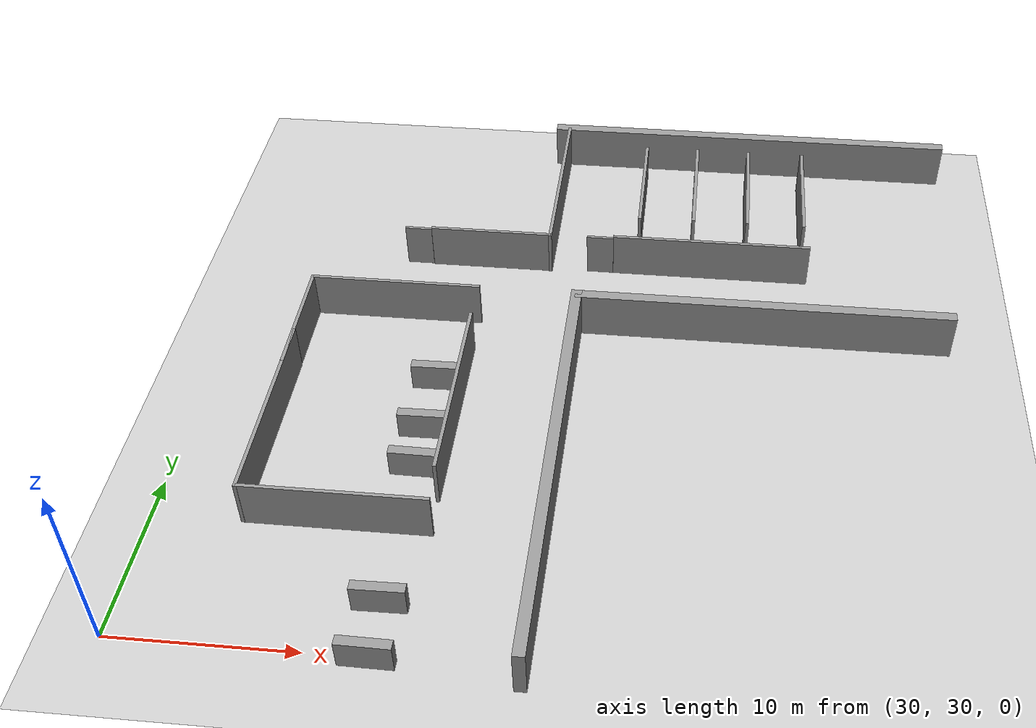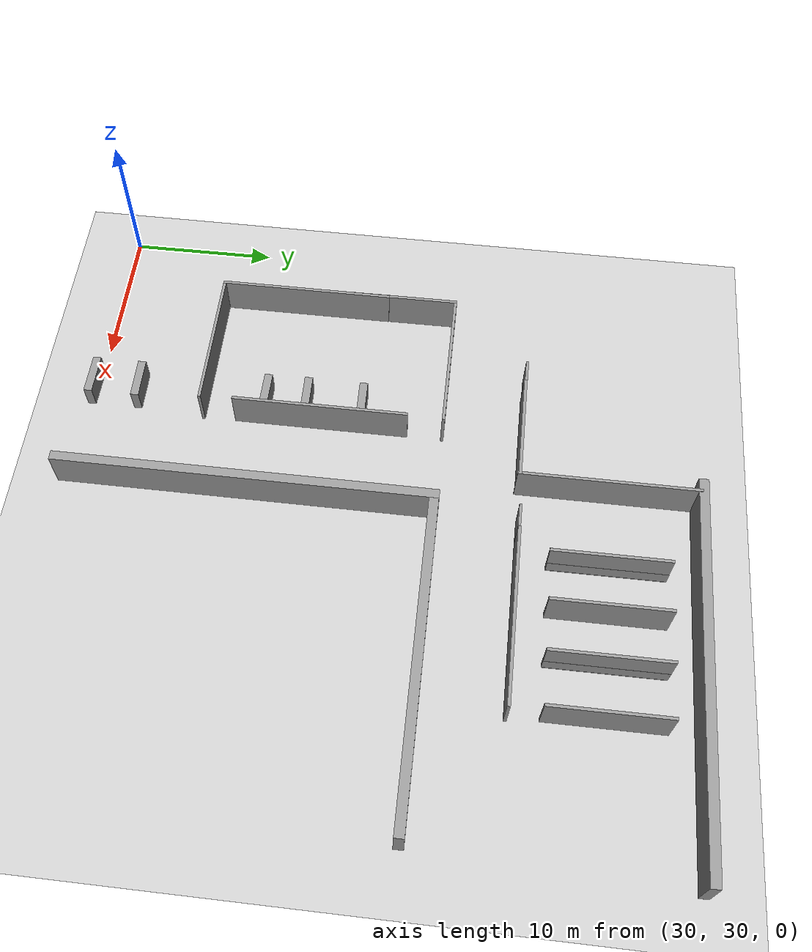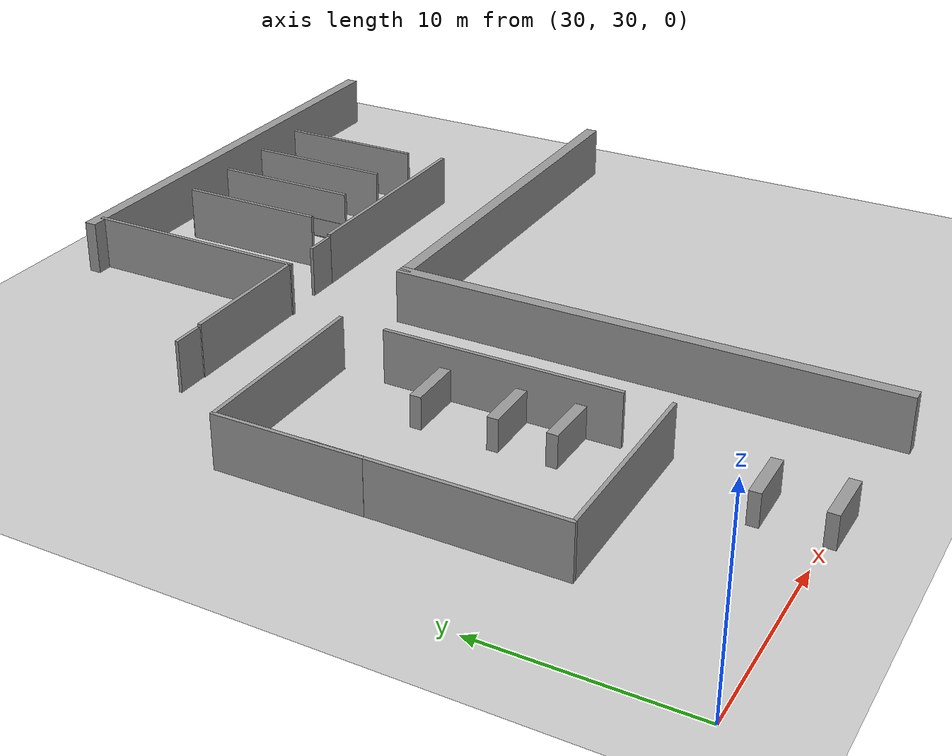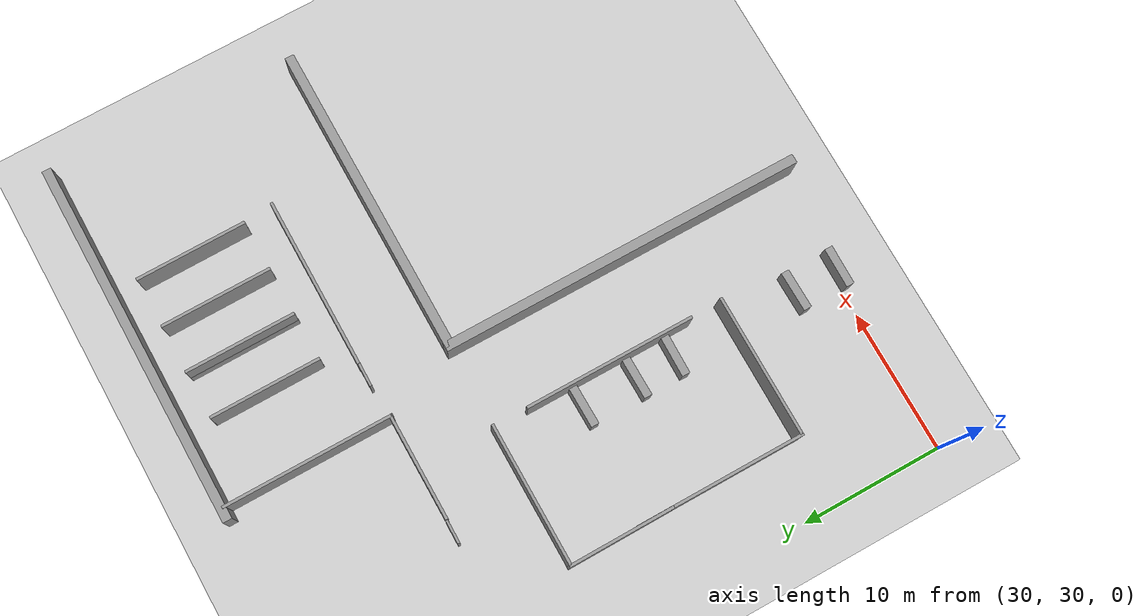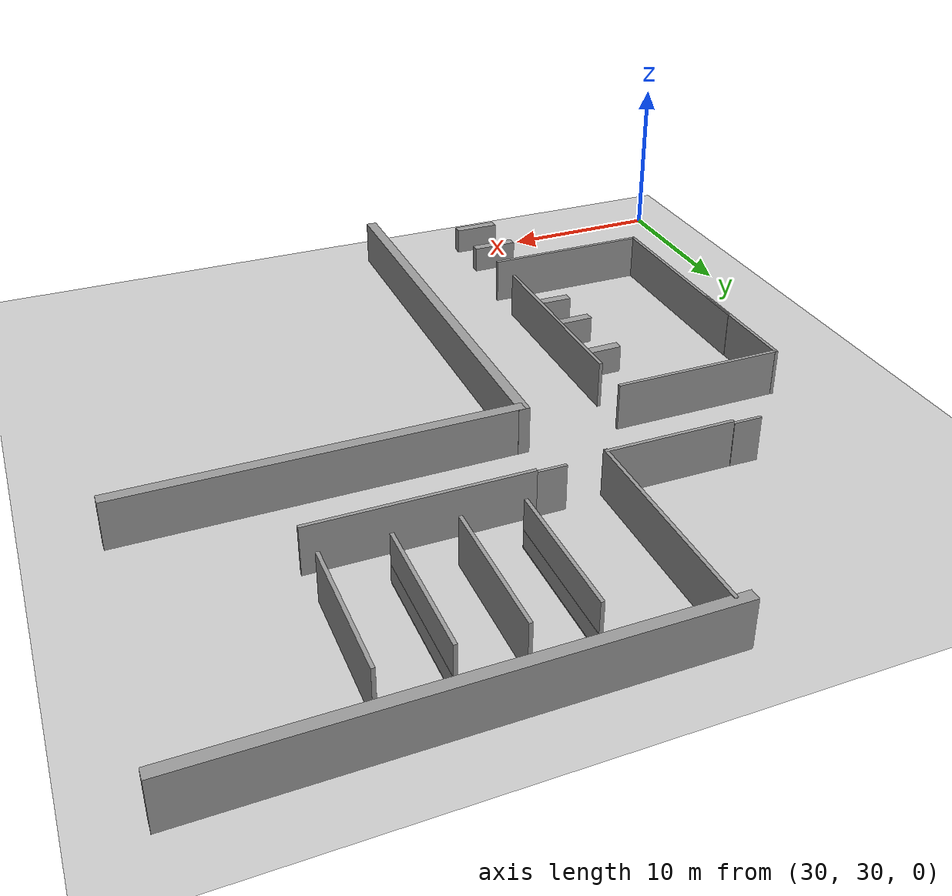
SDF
<sdf version="1.7">
 <world name="default">
  <model name="ground_plane">
   <static>1</static>
   <link name="link">
    <collision name="collision">
     <geometry><plane><normal>0 0 1</normal><size>100 100</size></plane></geometry>
     <surface><friction><ode><mu>100</mu><mu2>50</mu2></ode></friction></surface>
    </collision>
    <visual name="visual">
     <cast_shadows>0</cast_shadows>
     <geometry><plane><normal>0 0 1</normal><size>100 100</size></plane></geometry>
     <material>
      <script><uri>file://media/materials/scripts/gazebo.material</uri><name>Gazebo/Grey</name></script>
     </material>
    </visual>
   </link>
  </model>
  <model name="jiaoshi_clone_clone_clone_0">
   <model name="grey_wall">
    <static>1</static>
    <link name="link">
     <pose>0 0 1.4 0 -0 0</pose>
     <collision name="collision"><geometry><box><size>7.5 0.2 2.8</size></box></geometry></collision>
     <visual name="visual">
      <cast_shadows>0</cast_shadows>
      <geometry><box><size>7.5 0.2 2.8</size></box></geometry>
      <material>
       <script>
        <uri>model://grey_wall/materials/scripts</uri>
        <uri>model://grey_wall/materials/textures</uri>
        <name>vrc/grey_wall</name>
       </script>
      </material>
     </visual>
    </link>
    <pose>-3.38172 4.2623 0 0 0 -1.56473</pose>
   </model>
   <model name="grey_wall_10m">
    <link name="link">
     <pose>1.25079 -0.023082 1.4 0 -0 0</pose>
     <inertial>
      <inertia><ixx>0</ixx><ixy>0</ixy><ixz>0</ixz><iyy>0</iyy><iyz>0</iyz><izz>0</izz></inertia>
      <mass>0</mass>
     </inertial>
     <visual name="visual">
      <cast_shadows>0</cast_shadows>
      <geometry><box><size>10.0157 0.2 2.8</size></box></geometry>
      <material>
       <script>
        <uri>model://grey_wall/materials/scripts</uri>
        <uri>model://grey_wall/materials/textures</uri>
        <name>vrc/grey_wall</name>
       </script>
       <shader type="pixel"/>
       <ambient>1 1 1 1</ambient>
       <diffuse>1 1 1 1</diffuse>
       <specular>0 0 0 1</specular>
       <emissive>0 0 0 1</emissive>
      </material>
     </visual>
     <collision name="collision">
      <geometry><box><size>10.0157 0.2 2.8</size></box></geometry>
      <surface>
       <friction>
        <ode><mu>1</mu><mu2>1</mu2><fdir1>0 0 0</fdir1><slip1>0</slip1><slip2>0</slip2></ode>
        <torsional>
         <coefficient>1</coefficient>
         <patch_radius>0</patch_radius>
         <surface_radius>0</surface_radius>
         <use_patch_radius>1</use_patch_radius>
         <ode><slip>0</slip></ode>
        </torsional>
       </friction>
       <bounce><restitution_coefficient>0</restitution_coefficient><threshold>1e+06</threshold></bounce>
       <contact>
        <collide_without_contact>0</collide_without_contact>
        <collide_without_contact_bitmask>1</collide_without_contact_bitmask>
        <collide_bitmask>1</collide_bitmask>
        <ode>
         <soft_cfm>0</soft_cfm>
         <soft_erp>0.2</soft_erp>
         <kp>1e+13</kp>
         <kd>1</kd>
         <max_vel>0.01</max_vel>
         <min_depth>0</min_depth>
        </ode>
        <bullet>
         <split_impulse>1</split_impulse>
         <split_impulse_penetration_threshold>-0.01</split_impulse_penetration_threshold>
         <soft_cfm>0</soft_cfm>
         <soft_erp>0.2</soft_erp>
         <kp>1e+13</kp>
         <kd>1</kd>
        </bullet>
       </contact>
      </surface>
     </collision>
    </link>
    <static>1</static>
    <pose>0.433183 -8.77625 0 0 -0 0</pose>
   </model>
   <model name="grey_wall_10m_0">
    <link name="link">
     <pose>1.25079 -0.023082 1.4 0 -0 0</pose>
     <inertial>
      <inertia><ixx>0</ixx><ixy>0</ixy><ixz>0</ixz><iyy>0</iyy><iyz>0</iyz><izz>0</izz></inertia>
      <mass>0</mass>
     </inertial>
     <visual name="visual">
      <cast_shadows>0</cast_shadows>
      <geometry><box><size>10.0157 0.2 2.8</size></box></geometry>
      <material>
       <script>
        <uri>model://grey_wall/materials/scripts</uri>
        <uri>model://grey_wall/materials/textures</uri>
        <name>vrc/grey_wall</name>
       </script>
       <shader type="pixel"/>
       <ambient>1 1 1 1</ambient>
       <diffuse>1 1 1 1</diffuse>
       <specular>0 0 0 1</specular>
       <emissive>0 0 0 1</emissive>
      </material>
     </visual>
     <collision name="collision">
      <geometry><box><size>10.0157 0.2 2.8</size></box></geometry>
      <surface>
       <friction>
        <ode><mu>1</mu><mu2>1</mu2><fdir1>0 0 0</fdir1><slip1>0</slip1><slip2>0</slip2></ode>
        <torsional>
         <coefficient>1</coefficient>
         <patch_radius>0</patch_radius>
         <surface_radius>0</surface_radius>
         <use_patch_radius>1</use_patch_radius>
         <ode><slip>0</slip></ode>
        </torsional>
       </friction>
       <bounce><restitution_coefficient>0</restitution_coefficient><threshold>1e+06</threshold></bounce>
       <contact>
        <collide_without_contact>0</collide_without_contact>
        <collide_without_contact_bitmask>1</collide_without_contact_bitmask>
        <collide_bitmask>1</collide_bitmask>
        <ode>
         <soft_cfm>0</soft_cfm>
         <soft_erp>0.2</soft_erp>
         <kp>1e+13</kp>
         <kd>1</kd>
         <max_vel>0.01</max_vel>
         <min_depth>0</min_depth>
        </ode>
        <bullet>
         <split_impulse>1</split_impulse>
         <split_impulse_penetration_threshold>-0.01</split_impulse_penetration_threshold>
         <soft_cfm>0</soft_cfm>
         <soft_erp>0.2</soft_erp>
         <kp>1e+13</kp>
         <kd>1</kd>
        </bullet>
       </contact>
      </surface>
     </collision>
    </link>
    <static>1</static>
    <pose>0.377364 7.92573 0 0 -0 0</pose>
   </model>
   <model name="grey_wall_12m_vertial">
    <link name="link">
     <pose>0.289112 -0.003891 1.4 0 0 -1.5701</pose>
     <inertial>
      <inertia><ixx>0</ixx><ixy>0</ixy><ixz>0</ixz><iyy>0</iyy><iyz>0</iyz><izz>0</izz></inertia>
      <mass>0</mass>
     </inertial>
     <visual name="visual">
      <cast_shadows>0</cast_shadows>
      <geometry><box><size>12.0527 0.2 2.8</size></box></geometry>
      <material>
       <script>
        <uri>model://grey_wall/materials/scripts</uri>
        <uri>model://grey_wall/materials/textures</uri>
        <name>vrc/grey_wall</name>
       </script>
       <shader type="pixel"/>
       <ambient>1 1 1 1</ambient>
       <diffuse>1 1 1 1</diffuse>
       <specular>0 0 0 1</specular>
       <emissive>0 0 0 1</emissive>
      </material>
     </visual>
     <collision name="collision">
      <geometry><box><size>12.0527 0.2 2.8</size></box></geometry>
      <surface>
       <friction>
        <ode><mu>1</mu><mu2>1</mu2><fdir1>0 0 0</fdir1><slip1>0</slip1><slip2>0</slip2></ode>
        <torsional>
         <coefficient>1</coefficient>
         <patch_radius>0</patch_radius>
         <surface_radius>0</surface_radius>
         <use_patch_radius>1</use_patch_radius>
         <ode><slip>0</slip></ode>
        </torsional>
       </friction>
       <bounce><restitution_coefficient>0</restitution_coefficient><threshold>1e+06</threshold></bounce>
       <contact>
        <collide_without_contact>0</collide_without_contact>
        <collide_without_contact_bitmask>1</collide_without_contact_bitmask>
        <collide_bitmask>1</collide_bitmask>
        <ode>
         <soft_cfm>0</soft_cfm>
         <soft_erp>0.2</soft_erp>
         <kp>1e+13</kp>
         <kd>1</kd>
         <max_vel>0.01</max_vel>
         <min_depth>0</min_depth>
        </ode>
        <bullet>
         <split_impulse>1</split_impulse>
         <split_impulse_penetration_threshold>-0.01</split_impulse_penetration_threshold>
         <soft_cfm>0</soft_cfm>
         <soft_erp>0.2</soft_erp>
         <kp>1e+13</kp>
         <kd>1</kd>
        </bullet>
       </contact>
      </surface>
     </collision>
    </link>
    <static>1</static>
    <pose>-3.63668 -2.87268 0 0 -0 0</pose>
   </model>
   <model name="grey_wall_12m_vertial_0">
    <link name="link">
     <pose>0.289112 -0.003891 1.4 0 0 -1.5701</pose>
     <inertial>
      <inertia><ixx>0</ixx><ixy>0</ixy><ixz>0</ixz><iyy>0</iyy><iyz>0</iyz><izz>0</izz></inertia>
      <mass>0</mass>
     </inertial>
     <visual name="visual">
      <cast_shadows>0</cast_shadows>
      <geometry><box><size>12.0527 0.2 2.8</size></box></geometry>
      <material>
       <script>
        <uri>model://grey_wall/materials/scripts</uri>
        <uri>model://grey_wall/materials/textures</uri>
        <name>vrc/grey_wall</name>
       </script>
       <shader type="pixel"/>
       <ambient>1 1 1 1</ambient>
       <diffuse>1 1 1 1</diffuse>
       <specular>0 0 0 1</specular>
       <emissive>0 0 0 1</emissive>
      </material>
     </visual>
     <collision name="collision">
      <geometry><box><size>12.0527 0.2 2.8</size></box></geometry>
      <surface>
       <friction>
        <ode><mu>1</mu><mu2>1</mu2><fdir1>0 0 0</fdir1><slip1>0</slip1><slip2>0</slip2></ode>
        <torsional>
         <coefficient>1</coefficient>
         <patch_radius>0</patch_radius>
         <surface_radius>0</surface_radius>
         <use_patch_radius>1</use_patch_radius>
         <ode><slip>0</slip></ode>
        </torsional>
       </friction>
       <bounce><restitution_coefficient>0</restitution_coefficient><threshold>1e+06</threshold></bounce>
       <contact>
        <collide_without_contact>0</collide_without_contact>
        <collide_without_contact_bitmask>1</collide_without_contact_bitmask>
        <collide_bitmask>1</collide_bitmask>
        <ode>
         <soft_cfm>0</soft_cfm>
         <soft_erp>0.2</soft_erp>
         <kp>1e+13</kp>
         <kd>1</kd>
         <max_vel>0.01</max_vel>
         <min_depth>0</min_depth>
        </ode>
        <bullet>
         <split_impulse>1</split_impulse>
         <split_impulse_penetration_threshold>-0.01</split_impulse_penetration_threshold>
         <soft_cfm>0</soft_cfm>
         <soft_erp>0.2</soft_erp>
         <kp>1e+13</kp>
         <kd>1</kd>
        </bullet>
       </contact>
      </surface>
     </collision>
    </link>
    <static>1</static>
    <pose>6.20786 -0.539083 0 0 -0 0</pose>
   </model>
   <static>0</static>
   <pose>38.2716 46.5887 0 0 -0 0</pose>
  </model>
  <model name="grew_wall_long_vertial_1_clone_clone_1">
   <model name="grey_wall_long">
    <link name="link">
     <pose>0 0 1.37589 0 -0 0</pose>
     <inertial>
      <inertia><ixx>0</ixx><ixy>0</ixy><ixz>0</ixz><iyy>0</iyy><iyz>0</iyz><izz>0</izz></inertia>
      <mass>0</mass>
     </inertial>
     <visual name="visual">
      <cast_shadows>0</cast_shadows>
      <geometry><box><size>25.8815 0.642976 2.8</size></box></geometry>
      <material>
       <script>
        <uri>model://grey_wall/materials/scripts</uri>
        <uri>model://grey_wall/materials/textures</uri>
        <name>vrc/grey_wall</name>
       </script>
       <shader type="pixel"><normal_map>__default__</normal_map></shader>
       <ambient>1 1 1 1</ambient>
       <diffuse>1 1 1 1</diffuse>
       <specular>0 0 0 1</specular>
       <emissive>0 0 0 1</emissive>
      </material>
     </visual>
     <collision name="collision">
      <geometry><box><size>25.8815 0.642976 2.8</size></box></geometry>
      <surface>
       <friction>
        <ode><mu>1</mu><mu2>1</mu2><fdir1>0 0 0</fdir1><slip1>0</slip1><slip2>0</slip2></ode>
        <torsional>
         <coefficient>1</coefficient>
         <patch_radius>0</patch_radius>
         <surface_radius>0</surface_radius>
         <use_patch_radius>1</use_patch_radius>
         <ode><slip>0</slip></ode>
        </torsional>
       </friction>
       <bounce><restitution_coefficient>0</restitution_coefficient><threshold>1e+06</threshold></bounce>
       <contact>
        <collide_without_contact>0</collide_without_contact>
        <collide_without_contact_bitmask>1</collide_without_contact_bitmask>
        <collide_bitmask>1</collide_bitmask>
        <ode>
         <soft_cfm>0</soft_cfm>
         <soft_erp>0.2</soft_erp>
         <kp>1e+13</kp>
         <kd>1</kd>
         <max_vel>0.01</max_vel>
         <min_depth>0</min_depth>
        </ode>
        <bullet>
         <split_impulse>1</split_impulse>
         <split_impulse_penetration_threshold>-0.01</split_impulse_penetration_threshold>
         <soft_cfm>0</soft_cfm>
         <soft_erp>0.2</soft_erp>
         <kp>1e+13</kp>
         <kd>1</kd>
        </bullet>
       </contact>
      </surface>
     </collision>
    </link>
    <static>1</static>
    <pose>1e-06 -0 0 0 -0 1.57003</pose>
   </model>
   <static>0</static>
   <pose>50.6453 41.7944 0 0 -0 0</pose>
  </model>
  <model name="grey_wall_long_2_clone_0">
   <link name="link">
    <pose>0 0 1.37589 0 -0 0</pose>
    <inertial>
     <inertia><ixx>0</ixx><ixy>0</ixy><ixz>0</ixz><iyy>0</iyy><iyz>0</iyz><izz>0</izz></inertia>
     <mass>0</mass>
    </inertial>
    <visual name="visual">
     <cast_shadows>0</cast_shadows>
     <geometry><box><size>25.8815 0.642976 2.8</size></box></geometry>
     <material>
      <script>
       <uri>model://grey_wall/materials/scripts</uri>
       <uri>model://grey_wall/materials/textures</uri>
       <name>vrc/grey_wall</name>
      </script>
      <shader type="pixel"><normal_map>__default__</normal_map></shader>
      <ambient>1 1 1 1</ambient>
      <diffuse>1 1 1 1</diffuse>
      <specular>0 0 0 1</specular>
      <emissive>0 0 0 1</emissive>
     </material>
    </visual>
    <collision name="collision">
     <geometry><box><size>25.8815 0.642976 2.8</size></box></geometry>
     <surface>
      <friction>
       <ode><mu>1</mu><mu2>1</mu2><fdir1>0 0 0</fdir1><slip1>0</slip1><slip2>0</slip2></ode>
       <torsional>
        <coefficient>1</coefficient>
        <patch_radius>0</patch_radius>
        <surface_radius>0</surface_radius>
        <use_patch_radius>1</use_patch_radius>
        <ode><slip>0</slip></ode>
       </torsional>
      </friction>
      <bounce><restitution_coefficient>0</restitution_coefficient><threshold>1e+06</threshold></bounce>
      <contact>
       <collide_without_contact>0</collide_without_contact>
       <collide_without_contact_bitmask>1</collide_without_contact_bitmask>
       <collide_bitmask>1</collide_bitmask>
       <ode>
        <soft_cfm>0</soft_cfm>
        <soft_erp>0.2</soft_erp>
        <kp>1e+13</kp>
        <kd>1</kd>
        <max_vel>0.01</max_vel>
        <min_depth>0</min_depth>
       </ode>
       <bullet>
        <split_impulse>1</split_impulse>
        <split_impulse_penetration_threshold>-0.01</split_impulse_penetration_threshold>
        <soft_cfm>0</soft_cfm>
        <soft_erp>0.2</soft_erp>
        <kp>1e+13</kp>
        <kd>1</kd>
       </bullet>
      </contact>
     </surface>
    </collision>
   </link>
   <static>1</static>
   <pose>60.5181 71.8016 0 0 -0 0</pose>
  </model>
  <model name="grey_wall_long_term_clone_0">
   <link name="link">
    <pose>-1.74587 -0.378849 1.37589 0 -0 0</pose>
    <inertial>
     <inertia><ixx>0</ixx><ixy>0</ixy><ixz>0</ixz><iyy>0</iyy><iyz>0</iyz><izz>0</izz></inertia>
     <mass>0</mass>
    </inertial>
    <visual name="visual">
     <cast_shadows>0</cast_shadows>
     <geometry><box><size>22.1596 0.642976 2.8</size></box></geometry>
     <material>
      <script>
       <uri>model://grey_wall/materials/scripts</uri>
       <uri>model://grey_wall/materials/textures</uri>
       <name>vrc/grey_wall</name>
      </script>
      <shader type="pixel"><normal_map>__default__</normal_map></shader>
      <ambient>1 1 1 1</ambient>
      <diffuse>1 1 1 1</diffuse>
      <specular>0 0 0 1</specular>
      <emissive>0 0 0 1</emissive>
     </material>
    </visual>
    <collision name="collision">
     <geometry><box><size>22.1596 0.642976 2.8</size></box></geometry>
     <surface>
      <friction>
       <ode><mu>1</mu><mu2>1</mu2><fdir1>0 0 0</fdir1><slip1>0</slip1><slip2>0</slip2></ode>
       <torsional>
        <coefficient>1</coefficient>
        <patch_radius>0</patch_radius>
        <surface_radius>0</surface_radius>
        <use_patch_radius>1</use_patch_radius>
        <ode><slip>0</slip></ode>
       </torsional>
      </friction>
      <bounce><restitution_coefficient>0</restitution_coefficient><threshold>1e+06</threshold></bounce>
      <contact>
       <collide_without_contact>0</collide_without_contact>
       <collide_without_contact_bitmask>1</collide_without_contact_bitmask>
       <collide_bitmask>1</collide_bitmask>
       <ode>
        <soft_cfm>0</soft_cfm>
        <soft_erp>0.2</soft_erp>
        <kp>1e+13</kp>
        <kd>1</kd>
        <max_vel>0.01</max_vel>
        <min_depth>0</min_depth>
       </ode>
       <bullet>
        <split_impulse>1</split_impulse>
        <split_impulse_penetration_threshold>-0.01</split_impulse_penetration_threshold>
        <soft_cfm>0</soft_cfm>
        <soft_erp>0.2</soft_erp>
        <kp>1e+13</kp>
        <kd>1</kd>
       </bullet>
      </contact>
     </surface>
    </collision>
   </link>
   <static>1</static>
   <pose>63.4001 54.7813 0 0 -0 0</pose>
  </model>
  <model name="grey_wall_12m_vertial_1_clone">
   <link name="link">
    <pose>0.289112 -0.003891 1.4 0 0 -1.5701</pose>
    <inertial>
     <inertia><ixx>0</ixx><ixy>0</ixy><ixz>0</ixz><iyy>0</iyy><iyz>0</iyz><izz>0</izz></inertia>
     <mass>0</mass>
    </inertial>
    <visual name="visual">
     <cast_shadows>0</cast_shadows>
     <geometry><box><size>12.0527 0.2 2.8</size></box></geometry>
     <material>
      <script>
       <uri>model://grey_wall/materials/scripts</uri>
       <uri>model://grey_wall/materials/textures</uri>
       <name>vrc/grey_wall</name>
      </script>
      <shader type="pixel"/>
      <ambient>1 1 1 1</ambient>
      <diffuse>1 1 1 1</diffuse>
      <specular>0 0 0 1</specular>
      <emissive>0 0 0 1</emissive>
     </material>
    </visual>
    <collision name="collision">
     <geometry><box><size>12.0527 0.2 2.8</size></box></geometry>
     <surface>
      <friction>
       <ode><mu>1</mu><mu2>1</mu2><fdir1>0 0 0</fdir1><slip1>0</slip1><slip2>0</slip2></ode>
       <torsional>
        <coefficient>1</coefficient>
        <patch_radius>0</patch_radius>
        <surface_radius>0</surface_radius>
        <use_patch_radius>1</use_patch_radius>
        <ode><slip>0</slip></ode>
       </torsional>
      </friction>
      <bounce><restitution_coefficient>0</restitution_coefficient><threshold>1e+06</threshold></bounce>
      <contact>
       <collide_without_contact>0</collide_without_contact>
       <collide_without_contact_bitmask>1</collide_without_contact_bitmask>
       <collide_bitmask>1</collide_bitmask>
       <ode>
        <soft_cfm>0</soft_cfm>
        <soft_erp>0.2</soft_erp>
        <kp>1e+13</kp>
        <kd>1</kd>
        <max_vel>0.01</max_vel>
        <min_depth>0</min_depth>
       </ode>
       <bullet>
        <split_impulse>1</split_impulse>
        <split_impulse_penetration_threshold>-0.01</split_impulse_penetration_threshold>
        <soft_cfm>0</soft_cfm>
        <soft_erp>0.2</soft_erp>
        <kp>1e+13</kp>
        <kd>1</kd>
       </bullet>
      </contact>
     </surface>
    </collision>
   </link>
   <static>1</static>
   <pose>48.1781 65.7119 0 0 -0 0</pose>
  </model>
  <model name="grey_wall_12m_clone_0">
   <link name="link">
    <pose>0.289112 -0.003891 1.4 0 -0 0</pose>
    <inertial>
     <inertia><ixx>0</ixx><ixy>0</ixy><ixz>0</ixz><iyy>0</iyy><iyz>0</iyz><izz>0</izz></inertia>
     <mass>0</mass>
    </inertial>
    <visual name="visual">
     <cast_shadows>0</cast_shadows>
     <geometry><box><size>12.0527 0.2 2.8</size></box></geometry>
     <material>
      <script>
       <uri>model://grey_wall/materials/scripts</uri>
       <uri>model://grey_wall/materials/textures</uri>
       <name>vrc/grey_wall</name>
      </script>
      <shader type="pixel"/>
      <ambient>1 1 1 1</ambient>
      <diffuse>1 1 1 1</diffuse>
      <specular>0 0 0 1</specular>
      <emissive>0 0 0 1</emissive>
     </material>
    </visual>
    <collision name="collision">
     <geometry><box><size>12.0527 0.2 2.8</size></box></geometry>
     <surface>
      <friction>
       <ode><mu>1</mu><mu2>1</mu2><fdir1>0 0 0</fdir1><slip1>0</slip1><slip2>0</slip2></ode>
       <torsional>
        <coefficient>1</coefficient>
        <patch_radius>0</patch_radius>
        <surface_radius>0</surface_radius>
        <use_patch_radius>1</use_patch_radius>
        <ode><slip>0</slip></ode>
       </torsional>
      </friction>
      <bounce><restitution_coefficient>0</restitution_coefficient><threshold>1e+06</threshold></bounce>
      <contact>
       <collide_without_contact>0</collide_without_contact>
       <collide_without_contact_bitmask>1</collide_without_contact_bitmask>
       <collide_bitmask>1</collide_bitmask>
       <ode>
        <soft_cfm>0</soft_cfm>
        <soft_erp>0.2</soft_erp>
        <kp>1e+13</kp>
        <kd>1</kd>
        <max_vel>0.01</max_vel>
        <min_depth>0</min_depth>
       </ode>
       <bullet>
        <split_impulse>1</split_impulse>
        <split_impulse_penetration_threshold>-0.01</split_impulse_penetration_threshold>
        <soft_cfm>0</soft_cfm>
        <soft_erp>0.2</soft_erp>
        <kp>1e+13</kp>
        <kd>1</kd>
       </bullet>
      </contact>
     </surface>
    </collision>
   </link>
   <static>1</static>
   <pose>58.1271 60.0257 0 0 -0 0</pose>
  </model>
  <model name="unit_box_clone_17">
   <pose>43.223 48.7438 0.834396 0 3.2e-05 0.013657</pose>
   <link name="link">
    <inertial>
     <mass>1</mass>
     <inertia>
      <ixx>0.166667</ixx>
      <ixy>0</ixy>
      <ixz>0</ixz>
      <iyy>0.166667</iyy>
      <iyz>0</iyz>
      <izz>0.166667</izz>
     </inertia>
    </inertial>
    <collision name="collision"><geometry><box><size>2.81196 0.562598 1.66888</size></box></geometry></collision>
    <visual name="visual">
     <geometry><box><size>2.81196 0.562598 1.66888</size></box></geometry>
     <material>
      <script><name>Gazebo/Grey</name><uri>file://media/materials/scripts/gazebo.material</uri></script>
     </material>
    </visual>
   </link>
  </model>
  <model name="unit_box_clone_19">
   <pose>43.1847 44.866 0.834396 0 3.2e-05 0.012646</pose>
   <link name="link">
    <inertial>
     <mass>1</mass>
     <inertia>
      <ixx>0.166667</ixx>
      <ixy>0</ixy>
      <ixz>0</ixz>
      <iyy>0.166667</iyy>
      <iyz>0</iyz>
      <izz>0.166667</izz>
     </inertia>
    </inertial>
    <collision name="collision"><geometry><box><size>2.81196 0.562598 1.66888</size></box></geometry></collision>
    <visual name="visual">
     <geometry><box><size>2.81196 0.562598 1.66888</size></box></geometry>
     <material>
      <script><name>Gazebo/Grey</name><uri>file://media/materials/scripts/gazebo.material</uri></script>
     </material>
    </visual>
   </link>
  </model>
  <model name="unit_box_clone_21">
   <pose>43.2422 42.0021 0.834396 -0 -3.2e-05 -0.013889</pose>
   <link name="link">
    <inertial>
     <mass>1</mass>
     <inertia>
      <ixx>0.166667</ixx>
      <ixy>0</ixy>
      <ixz>0</ixz>
      <iyy>0.166667</iyy>
      <iyz>0</iyz>
      <izz>0.166667</izz>
     </inertia>
    </inertial>
    <collision name="collision"><geometry><box><size>2.81196 0.562598 1.66888</size></box></geometry></collision>
    <visual name="visual">
     <geometry><box><size>2.81196 0.562598 1.66888</size></box></geometry>
     <material>
      <script><name>Gazebo/Grey</name><uri>file://media/materials/scripts/gazebo.material</uri></script>
     </material>
    </visual>
   </link>
  </model>
  <model name="unit_box_clone_23">
   <pose>43.1679 32.9941 0.834396 0 -3.2e-05 0.013725</pose>
   <link name="link">
    <inertial>
     <mass>1</mass>
     <inertia>
      <ixx>0.166667</ixx>
      <ixy>0</ixy>
      <ixz>0</ixz>
      <iyy>0.166667</iyy>
      <iyz>0</iyz>
      <izz>0.166667</izz>
     </inertia>
    </inertial>
    <collision name="collision"><geometry><box><size>2.81196 0.562598 1.66888</size></box></geometry></collision>
    <visual name="visual">
     <geometry><box><size>2.81196 0.562598 1.66888</size></box></geometry>
     <material>
      <script><name>Gazebo/Grey</name><uri>file://media/materials/scripts/gazebo.material</uri></script>
     </material>
    </visual>
   </link>
  </model>
  <model name="unit_box_clone_25">
   <pose>43.1755 29.7351 0.834396 0 -3.2e-05 -0.013031</pose>
   <link name="link">
    <inertial>
     <mass>1</mass>
     <inertia>
      <ixx>0.166667</ixx>
      <ixy>0</ixy>
      <ixz>0</ixz>
      <iyy>0.166667</iyy>
      <iyz>0</iyz>
      <izz>0.166667</izz>
     </inertia>
    </inertial>
    <collision name="collision"><geometry><box><size>2.81196 0.562598 1.66888</size></box></geometry></collision>
    <visual name="visual">
     <geometry><box><size>2.81196 0.562598 1.66888</size></box></geometry>
     <material>
      <script><name>Gazebo/Grey</name><uri>file://media/materials/scripts/gazebo.material</uri></script>
     </material>
    </visual>
   </link>
  </model>
  <model name="grey_wall_low_clone_4">
   <link name="link">
    <pose>0.546134 -0.568384 0.521109 0 -0 0</pose>
    <inertial>
     <inertia><ixx>0</ixx><ixy>0</ixy><ixz>0</ixz><iyy>0</iyy><iyz>0</iyz><izz>0</izz></inertia>
     <mass>0</mass>
    </inertial>
    <visual name="visual">
     <cast_shadows>0</cast_shadows>
     <geometry><box><size>7.82417 0.2 1.03493</size></box></geometry>
     <material>
      <script>
       <uri>model://grey_wall/materials/scripts</uri>
       <uri>model://grey_wall/materials/textures</uri>
       <name>vrc/grey_wall</name>
      </script>
      <shader type="pixel"/>
      <ambient>1 1 1 1</ambient>
      <diffuse>1 1 1 1</diffuse>
      <specular>0 0 0 1</specular>
      <emissive>0 0 0 1</emissive>
     </material>
    </visual>
    <collision name="collision">
     <geometry><box><size>7.82417 0.2 1.03493</size></box></geometry>
     <surface>
      <friction>
       <ode><mu>1</mu><mu2>1</mu2><fdir1>0 0 0</fdir1><slip1>0</slip1><slip2>0</slip2></ode>
       <torsional>
        <coefficient>1</coefficient>
        <patch_radius>0</patch_radius>
        <surface_radius>0</surface_radius>
        <use_patch_radius>1</use_patch_radius>
        <ode><slip>0</slip></ode>
       </torsional>
      </friction>
      <bounce><restitution_coefficient>0</restitution_coefficient><threshold>1e+06</threshold></bounce>
      <contact>
       <collide_without_contact>0</collide_without_contact>
       <collide_without_contact_bitmask>1</collide_without_contact_bitmask>
       <collide_bitmask>1</collide_bitmask>
       <ode>
        <soft_cfm>0</soft_cfm>
        <soft_erp>0.2</soft_erp>
        <kp>1e+13</kp>
        <kd>1</kd>
        <max_vel>0.01</max_vel>
        <min_depth>0</min_depth>
       </ode>
       <bullet>
        <split_impulse>1</split_impulse>
        <split_impulse_penetration_threshold>-0.01</split_impulse_penetration_threshold>
        <soft_cfm>0</soft_cfm>
        <soft_erp>0.2</soft_erp>
        <kp>1e+13</kp>
        <kd>1</kd>
       </bullet>
      </contact>
     </surface>
    </collision>
   </link>
   <static>1</static>
   <pose>54.4282 66.5036 -0 0 0 -1.56746</pose>
  </model>
  <model name="grey_wall_low_clone_5">
   <link name="link">
    <pose>0.546134 -0.568384 0.521109 0 -0 0</pose>
    <inertial>
     <inertia><ixx>0</ixx><ixy>0</ixy><ixz>0</ixz><iyy>0</iyy><iyz>0</iyz><izz>0</izz></inertia>
     <mass>0</mass>
    </inertial>
    <visual name="visual">
     <cast_shadows>0</cast_shadows>
     <geometry><box><size>7.82417 0.2 1.03493</size></box></geometry>
     <material>
      <script>
       <uri>model://grey_wall/materials/scripts</uri>
       <uri>model://grey_wall/materials/textures</uri>
       <name>vrc/grey_wall</name>
      </script>
      <shader type="pixel"/>
      <ambient>1 1 1 1</ambient>
      <diffuse>1 1 1 1</diffuse>
      <specular>0 0 0 1</specular>
      <emissive>0 0 0 1</emissive>
     </material>
    </visual>
    <collision name="collision">
     <geometry><box><size>7.82417 0.2 1.03493</size></box></geometry>
     <surface>
      <friction>
       <ode><mu>1</mu><mu2>1</mu2><fdir1>0 0 0</fdir1><slip1>0</slip1><slip2>0</slip2></ode>
       <torsional>
        <coefficient>1</coefficient>
        <patch_radius>0</patch_radius>
        <surface_radius>0</surface_radius>
        <use_patch_radius>1</use_patch_radius>
        <ode><slip>0</slip></ode>
       </torsional>
      </friction>
      <bounce><restitution_coefficient>0</restitution_coefficient><threshold>1e+06</threshold></bounce>
      <contact>
       <collide_without_contact>0</collide_without_contact>
       <collide_without_contact_bitmask>1</collide_without_contact_bitmask>
       <collide_bitmask>1</collide_bitmask>
       <ode>
        <soft_cfm>0</soft_cfm>
        <soft_erp>0.2</soft_erp>
        <kp>1e+13</kp>
        <kd>1</kd>
        <max_vel>0.01</max_vel>
        <min_depth>0</min_depth>
       </ode>
       <bullet>
        <split_impulse>1</split_impulse>
        <split_impulse_penetration_threshold>-0.01</split_impulse_penetration_threshold>
        <soft_cfm>0</soft_cfm>
        <soft_erp>0.2</soft_erp>
        <kp>1e+13</kp>
        <kd>1</kd>
       </bullet>
      </contact>
     </surface>
    </collision>
   </link>
   <static>1</static>
   <pose>57.7577 66.512 -0 0 0 -1.56746</pose>
  </model>
  <model name="grey_wall_low_clone_6">
   <link name="link">
    <pose>0.546134 -0.568384 0.521109 0 -0 0</pose>
    <inertial>
     <inertia><ixx>0</ixx><ixy>0</ixy><ixz>0</ixz><iyy>0</iyy><iyz>0</iyz><izz>0</izz></inertia>
     <mass>0</mass>
    </inertial>
    <visual name="visual">
     <cast_shadows>0</cast_shadows>
     <geometry><box><size>7.82417 0.2 1.03493</size></box></geometry>
     <material>
      <script>
       <uri>model://grey_wall/materials/scripts</uri>
       <uri>model://grey_wall/materials/textures</uri>
       <name>vrc/grey_wall</name>
      </script>
      <shader type="pixel"/>
      <ambient>1 1 1 1</ambient>
      <diffuse>1 1 1 1</diffuse>
      <specular>0 0 0 1</specular>
      <emissive>0 0 0 1</emissive>
     </material>
    </visual>
    <collision name="collision">
     <geometry><box><size>7.82417 0.2 1.03493</size></box></geometry>
     <surface>
      <friction>
       <ode><mu>1</mu><mu2>1</mu2><fdir1>0 0 0</fdir1><slip1>0</slip1><slip2>0</slip2></ode>
       <torsional>
        <coefficient>1</coefficient>
        <patch_radius>0</patch_radius>
        <surface_radius>0</surface_radius>
        <use_patch_radius>1</use_patch_radius>
        <ode><slip>0</slip></ode>
       </torsional>
      </friction>
      <bounce><restitution_coefficient>0</restitution_coefficient><threshold>1e+06</threshold></bounce>
      <contact>
       <collide_without_contact>0</collide_without_contact>
       <collide_without_contact_bitmask>1</collide_without_contact_bitmask>
       <collide_bitmask>1</collide_bitmask>
       <ode>
        <soft_cfm>0</soft_cfm>
        <soft_erp>0.2</soft_erp>
        <kp>1e+13</kp>
        <kd>1</kd>
        <max_vel>0.01</max_vel>
        <min_depth>0</min_depth>
       </ode>
       <bullet>
        <split_impulse>1</split_impulse>
        <split_impulse_penetration_threshold>-0.01</split_impulse_penetration_threshold>
        <soft_cfm>0</soft_cfm>
        <soft_erp>0.2</soft_erp>
        <kp>1e+13</kp>
        <kd>1</kd>
       </bullet>
      </contact>
     </surface>
    </collision>
   </link>
   <static>1</static>
   <pose>61.1482 66.529 -0 0 0 -1.56746</pose>
  </model>
  <model name="grey_wall_0_clone_clone">
   <static>1</static>
   <link name="link">
    <pose>0 0 1.4 0 -0 0</pose>
    <collision name="collision"><geometry><box><size>7.5 0.2 2.8</size></box></geometry></collision>
    <visual name="visual">
     <cast_shadows>0</cast_shadows>
     <geometry><box><size>7.5 0.2 2.8</size></box></geometry>
     <material>
      <script>
       <uri>model://grey_wall/materials/scripts</uri>
       <uri>model://grey_wall/materials/textures</uri>
       <name>vrc/grey_wall</name>
      </script>
     </material>
    </visual>
   </link>
   <pose>44.8085 59.8409 0 0 -0 0</pose>
  </model>
  <model name="grey_wall_high_clone_4">
   <link name="link">
    <pose>0.546134 -0.568384 0.521109 0 -0 0</pose>
    <inertial>
     <inertia><ixx>0</ixx><ixy>0</ixy><ixz>0</ixz><iyy>0</iyy><iyz>0</iyz><izz>0</izz></inertia>
     <mass>0</mass>
    </inertial>
    <visual name="visual">
     <cast_shadows>0</cast_shadows>
     <geometry><box><size>7.82417 0.2 4.57376</size></box></geometry>
     <material>
      <script>
       <uri>model://grey_wall/materials/scripts</uri>
       <uri>model://grey_wall/materials/textures</uri>
       <name>vrc/grey_wall</name>
      </script>
      <shader type="pixel"/>
      <ambient>1 1 1 1</ambient>
      <diffuse>1 1 1 1</diffuse>
      <specular>0 0 0 1</specular>
      <emissive>0 0 0 1</emissive>
     </material>
    </visual>
    <collision name="collision">
     <geometry><box><size>7.82417 0.2 4.57376</size></box></geometry>
     <surface>
      <friction>
       <ode><mu>1</mu><mu2>1</mu2><fdir1>0 0 0</fdir1><slip1>0</slip1><slip2>0</slip2></ode>
       <torsional>
        <coefficient>1</coefficient>
        <patch_radius>0</patch_radius>
        <surface_radius>0</surface_radius>
        <use_patch_radius>1</use_patch_radius>
        <ode><slip>0</slip></ode>
       </torsional>
      </friction>
      <bounce><restitution_coefficient>0</restitution_coefficient><threshold>1e+06</threshold></bounce>
      <contact>
       <collide_without_contact>0</collide_without_contact>
       <collide_without_contact_bitmask>1</collide_without_contact_bitmask>
       <collide_bitmask>1</collide_bitmask>
       <ode>
        <soft_cfm>0</soft_cfm>
        <soft_erp>0.2</soft_erp>
        <kp>1e+13</kp>
        <kd>1</kd>
        <max_vel>0.01</max_vel>
        <min_depth>0</min_depth>
       </ode>
       <bullet>
        <split_impulse>1</split_impulse>
        <split_impulse_penetration_threshold>-0.01</split_impulse_penetration_threshold>
        <soft_cfm>0</soft_cfm>
        <soft_erp>0.2</soft_erp>
        <kp>1e+13</kp>
        <kd>1</kd>
       </bullet>
      </contact>
     </surface>
    </collision>
   </link>
   <static>1</static>
   <pose>54.424 66.4759 -0 0 0 -1.56746</pose>
  </model>
  <model name="grey_wall_high_clone_5">
   <link name="link">
    <pose>0.546134 -0.568384 0.521109 0 -0 0</pose>
    <inertial>
     <inertia><ixx>0</ixx><ixy>0</ixy><ixz>0</ixz><iyy>0</iyy><iyz>0</iyz><izz>0</izz></inertia>
     <mass>0</mass>
    </inertial>
    <visual name="visual">
     <cast_shadows>0</cast_shadows>
     <geometry><box><size>7.82417 0.2 4.57376</size></box></geometry>
     <material>
      <script>
       <uri>model://grey_wall/materials/scripts</uri>
       <uri>model://grey_wall/materials/textures</uri>
       <name>vrc/grey_wall</name>
      </script>
      <shader type="pixel"/>
      <ambient>1 1 1 1</ambient>
      <diffuse>1 1 1 1</diffuse>
      <specular>0 0 0 1</specular>
      <emissive>0 0 0 1</emissive>
     </material>
    </visual>
    <collision name="collision">
     <geometry><box><size>7.82417 0.2 4.57376</size></box></geometry>
     <surface>
      <friction>
       <ode><mu>1</mu><mu2>1</mu2><fdir1>0 0 0</fdir1><slip1>0</slip1><slip2>0</slip2></ode>
       <torsional>
        <coefficient>1</coefficient>
        <patch_radius>0</patch_radius>
        <surface_radius>0</surface_radius>
        <use_patch_radius>1</use_patch_radius>
        <ode><slip>0</slip></ode>
       </torsional>
      </friction>
      <bounce><restitution_coefficient>0</restitution_coefficient><threshold>1e+06</threshold></bounce>
      <contact>
       <collide_without_contact>0</collide_without_contact>
       <collide_without_contact_bitmask>1</collide_without_contact_bitmask>
       <collide_bitmask>1</collide_bitmask>
       <ode>
        <soft_cfm>0</soft_cfm>
        <soft_erp>0.2</soft_erp>
        <kp>1e+13</kp>
        <kd>1</kd>
        <max_vel>0.01</max_vel>
        <min_depth>0</min_depth>
       </ode>
       <bullet>
        <split_impulse>1</split_impulse>
        <split_impulse_penetration_threshold>-0.01</split_impulse_penetration_threshold>
        <soft_cfm>0</soft_cfm>
        <soft_erp>0.2</soft_erp>
        <kp>1e+13</kp>
        <kd>1</kd>
       </bullet>
      </contact>
     </surface>
    </collision>
   </link>
   <static>1</static>
   <pose>57.7804 66.5298 -0 0 0 -1.56746</pose>
  </model>
  <model name="grey_wall_high_clone_6">
   <link name="link">
    <pose>0.546134 -0.568384 0.521109 0 -0 0</pose>
    <inertial>
     <inertia><ixx>0</ixx><ixy>0</ixy><ixz>0</ixz><iyy>0</iyy><iyz>0</iyz><izz>0</izz></inertia>
     <mass>0</mass>
    </inertial>
    <visual name="visual">
     <cast_shadows>0</cast_shadows>
     <geometry><box><size>7.82417 0.2 4.57376</size></box></geometry>
     <material>
      <script>
       <uri>model://grey_wall/materials/scripts</uri>
       <uri>model://grey_wall/materials/textures</uri>
       <name>vrc/grey_wall</name>
      </script>
      <shader type="pixel"/>
      <ambient>1 1 1 1</ambient>
      <diffuse>1 1 1 1</diffuse>
      <specular>0 0 0 1</specular>
      <emissive>0 0 0 1</emissive>
     </material>
    </visual>
    <collision name="collision">
     <geometry><box><size>7.82417 0.2 4.57376</size></box></geometry>
     <surface>
      <friction>
       <ode><mu>1</mu><mu2>1</mu2><fdir1>0 0 0</fdir1><slip1>0</slip1><slip2>0</slip2></ode>
       <torsional>
        <coefficient>1</coefficient>
        <patch_radius>0</patch_radius>
        <surface_radius>0</surface_radius>
        <use_patch_radius>1</use_patch_radius>
        <ode><slip>0</slip></ode>
       </torsional>
      </friction>
      <bounce><restitution_coefficient>0</restitution_coefficient><threshold>1e+06</threshold></bounce>
      <contact>
       <collide_without_contact>0</collide_without_contact>
       <collide_without_contact_bitmask>1</collide_without_contact_bitmask>
       <collide_bitmask>1</collide_bitmask>
       <ode>
        <soft_cfm>0</soft_cfm>
        <soft_erp>0.2</soft_erp>
        <kp>1e+13</kp>
        <kd>1</kd>
        <max_vel>0.01</max_vel>
        <min_depth>0</min_depth>
       </ode>
       <bullet>
        <split_impulse>1</split_impulse>
        <split_impulse_penetration_threshold>-0.01</split_impulse_penetration_threshold>
        <soft_cfm>0</soft_cfm>
        <soft_erp>0.2</soft_erp>
        <kp>1e+13</kp>
        <kd>1</kd>
       </bullet>
      </contact>
     </surface>
    </collision>
   </link>
   <static>1</static>
   <pose>61.1439 66.5402 -0 0 0 -1.56746</pose>
  </model>
  <model name="grey_wall_high_clone_7">
   <link name="link">
    <pose>0.546134 -0.568384 0.521109 0 -0 0</pose>
    <inertial>
     <inertia><ixx>0</ixx><ixy>0</ixy><ixz>0</ixz><iyy>0</iyy><iyz>0</iyz><izz>0</izz></inertia>
     <mass>0</mass>
    </inertial>
    <visual name="visual">
     <cast_shadows>0</cast_shadows>
     <geometry><box><size>7.82417 0.2 4.57376</size></box></geometry>
     <material>
      <script>
       <uri>model://grey_wall/materials/scripts</uri>
       <uri>model://grey_wall/materials/textures</uri>
       <name>vrc/grey_wall</name>
      </script>
      <shader type="pixel"/>
      <ambient>1 1 1 1</ambient>
      <diffuse>1 1 1 1</diffuse>
      <specular>0 0 0 1</specular>
      <emissive>0 0 0 1</emissive>
     </material>
    </visual>
    <collision name="collision">
     <geometry><box><size>7.82417 0.2 4.57376</size></box></geometry>
     <surface>
      <friction>
       <ode><mu>1</mu><mu2>1</mu2><fdir1>0 0 0</fdir1><slip1>0</slip1><slip2>0</slip2></ode>
       <torsional>
        <coefficient>1</coefficient>
        <patch_radius>0</patch_radius>
        <surface_radius>0</surface_radius>
        <use_patch_radius>1</use_patch_radius>
        <ode><slip>0</slip></ode>
       </torsional>
      </friction>
      <bounce><restitution_coefficient>0</restitution_coefficient><threshold>1e+06</threshold></bounce>
      <contact>
       <collide_without_contact>0</collide_without_contact>
       <collide_without_contact_bitmask>1</collide_without_contact_bitmask>
       <collide_bitmask>1</collide_bitmask>
       <ode>
        <soft_cfm>0</soft_cfm>
        <soft_erp>0.2</soft_erp>
        <kp>1e+13</kp>
        <kd>1</kd>
        <max_vel>0.01</max_vel>
        <min_depth>0</min_depth>
       </ode>
       <bullet>
        <split_impulse>1</split_impulse>
        <split_impulse_penetration_threshold>-0.01</split_impulse_penetration_threshold>
        <soft_cfm>0</soft_cfm>
        <soft_erp>0.2</soft_erp>
        <kp>1e+13</kp>
        <kd>1</kd>
       </bullet>
      </contact>
     </surface>
    </collision>
   </link>
   <static>1</static>
   <pose>64.6526 66.5628 -0 0 0 -1.56746</pose>
  </model>
  <model name="unit_box_2">
   <pose>51.5693 60.0143 1.33583 0 -1e-06 -0.007434</pose>
   <link name="link">
    <inertial>
     <mass>1</mass>
     <inertia>
      <ixx>0.166667</ixx>
      <ixy>0</ixy>
      <ixz>0</ixz>
      <iyy>0.166667</iyy>
      <iyz>0</iyz>
      <izz>0.166667</izz>
     </inertia>
    </inertial>
    <collision name="collision"><geometry><box><size>1.63893 0.168776 2.67165</size></box></geometry></collision>
    <visual name="visual">
     <geometry><box><size>1.63893 0.168776 2.67165</size></box></geometry>
     <material>
      <script><name>Gazebo/Grey</name><uri>file://media/materials/scripts/gazebo.material</uri></script>
     </material>
    </visual>
   </link>
  </model>
  <model name="unit_box_2_clone">
   <pose>40.2219 59.885 1.33583 0 -1e-06 -0.007447</pose>
   <link name="link">
    <inertial>
     <mass>1</mass>
     <inertia>
      <ixx>0.166667</ixx>
      <ixy>0</ixy>
      <ixz>0</ixz>
      <iyy>0.166667</iyy>
      <iyz>0</iyz>
      <izz>0.166667</izz>
     </inertia>
    </inertial>
    <collision name="collision"><geometry><box><size>1.63893 0.168776 2.67165</size></box></geometry></collision>
    <visual name="visual">
     <geometry><box><size>1.63893 0.168776 2.67165</size></box></geometry>
     <material>
      <script><name>Gazebo/Grey</name><uri>file://media/materials/scripts/gazebo.material</uri></script>
     </material>
    </visual>
   </link>
  </model>
 </world>
</sdf>
